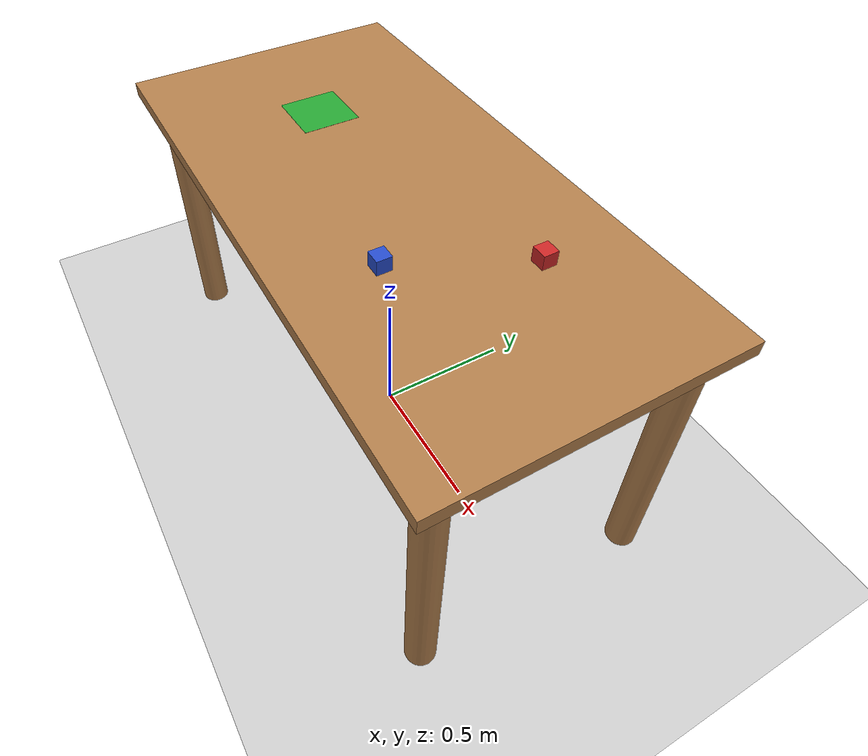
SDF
<?xml version="1.0" ?>
<sdf version="1.6">
  <world name="pick_place_world">

    <!-- Physics -->
    <physics name="default_physics" default="0" type="ode">
      <gravity>0 0 -9.8066</gravity>
      <ode>
        <solver>
          <type>quick</type>
          <iters>150</iters>
          <sor>1.3</sor>
        </solver>
        <constraints>
          <cfm>0.00001</cfm>
          <erp>0.2</erp>
          <contact_max_correcting_vel>1000</contact_max_correcting_vel>
          <contact_surface_layer>0.01</contact_surface_layer>
        </constraints>
      </ode>
      <max_step_size>0.004</max_step_size>
      <real_time_factor>1.0</real_time_factor>
      <real_time_update_rate>250</real_time_update_rate>
    </physics>

    <!-- Lighting -->
    <include>
      <uri>model://sun</uri>
    </include>

    <!-- Ground plane -->
    <include>
      <uri>model://ground_plane</uri>
    </include>

    <!-- Table -->
    <model name="table">
      <static>true</static>
      <link name="link">
        <collision name="surface">
          <pose>0 0 1 0 0 0</pose>
          <geometry>
            <box>
              <size>2 1 0.05</size>
            </box>
          </geometry>
        </collision>
        <visual name="visual1">
          <pose>0 0 1 0 0 0</pose>
          <geometry>
            <box>
              <size>2 1 0.05</size>
            </box>
          </geometry>
          <material>
            <script>
              <uri>file://media/materials/scripts/gazebo.material</uri>
              <name>Gazebo/Wood</name>
            </script>
          </material>
        </visual>
        <!-- Table legs -->
        <collision name="leg1">
          <pose>0.9 0.4 0.5 0 0 0</pose>
          <geometry>
            <cylinder>
              <radius>0.05</radius>
              <length>1</length>
            </cylinder>
          </geometry>
        </collision>
        <visual name="leg1">
          <pose>0.9 0.4 0.5 0 0 0</pose>
          <geometry>
            <cylinder>
              <radius>0.05</radius>
              <length>1</length>
            </cylinder>
          </geometry>
          <material>
            <script>
              <uri>file://media/materials/scripts/gazebo.material</uri>
              <name>Gazebo/Wood</name>
            </script>
          </material>
        </visual>
        <collision name="leg2">
          <pose>0.9 -0.4 0.5 0 0 0</pose>
          <geometry>
            <cylinder>
              <radius>0.05</radius>
              <length>1</length>
            </cylinder>
          </geometry>
        </collision>
        <visual name="leg2">
          <pose>0.9 -0.4 0.5 0 0 0</pose>
          <geometry>
            <cylinder>
              <radius>0.05</radius>
              <length>1</length>
            </cylinder>
          </geometry>
          <material>
            <script>
              <uri>file://media/materials/scripts/gazebo.material</uri>
              <name>Gazebo/Wood</name>
            </script>
          </material>
        </visual>
        <collision name="leg3">
          <pose>-0.9 0.4 0.5 0 0 0</pose>
          <geometry>
            <cylinder>
              <radius>0.05</radius>
              <length>1</length>
            </cylinder>
          </geometry>
        </collision>
        <visual name="leg3">
          <pose>-0.9 0.4 0.5 0 0 0</pose>
          <geometry>
            <cylinder>
              <radius>0.05</radius>
              <length>1</length>
            </cylinder>
          </geometry>
          <material>
            <script>
              <uri>file://media/materials/scripts/gazebo.material</uri>
              <name>Gazebo/Wood</name>
            </script>
          </material>
        </visual>
        <collision name="leg4">
          <pose>-0.9 -0.4 0.5 0 0 0</pose>
          <geometry>
            <cylinder>
              <radius>0.05</radius>
              <length>1</length>
            </cylinder>
          </geometry>
        </collision>
        <visual name="leg4">
          <pose>-0.9 -0.4 0.5 0 0 0</pose>
          <geometry>
            <cylinder>
              <radius>0.05</radius>
              <length>1</length>
            </cylinder>
          </geometry>
          <material>
            <script>
              <uri>file://media/materials/scripts/gazebo.material</uri>
              <name>Gazebo/Wood</name>
            </script>
          </material>
        </visual>
      </link>
    </model>

    <!-- Objects to pick -->
    <model name="red_box">
      <pose>0.5 0.2 1.05 0 0 0</pose>
      <link name="link">
        <inertial>
          <mass>0.1</mass>
          <inertia>
            <ixx>0.000167</ixx>
            <ixy>0</ixy>
            <ixz>0</ixz>
            <iyy>0.000167</iyy>
            <iyz>0</iyz>
            <izz>0.000167</izz>
          </inertia>
        </inertial>
        <collision name="collision">
          <geometry>
            <box>
              <size>0.05 0.05 0.05</size>
            </box>
          </geometry>
        </collision>
        <visual name="visual">
          <geometry>
            <box>
              <size>0.05 0.05 0.05</size>
            </box>
          </geometry>
          <material>
            <script>
              <uri>file://media/materials/scripts/gazebo.material</uri>
              <name>Gazebo/Red</name>
            </script>
          </material>
        </visual>
      </link>
    </model>

    <model name="blue_box">
      <pose>0.3 -0.2 1.05 0 0 0</pose>
      <link name="link">
        <inertial>
          <mass>0.1</mass>
          <inertia>
            <ixx>0.000167</ixx>
            <ixy>0</ixy>
            <ixz>0</ixz>
            <iyy>0.000167</iyy>
            <iyz>0</iyz>
            <izz>0.000167</izz>
          </inertia>
        </inertial>
        <collision name="collision">
          <geometry>
            <box>
              <size>0.05 0.05 0.05</size>
            </box>
          </geometry>
        </collision>
        <visual name="visual">
          <geometry>
            <box>
              <size>0.05 0.05 0.05</size>
            </box>
          </geometry>
          <material>
            <script>
              <uri>file://media/materials/scripts/gazebo.material</uri>
              <name>Gazebo/Blue</name>
            </script>
          </material>
        </visual>
      </link>
    </model>

    <!-- Target area -->
    <model name="target_area">
      <static>true</static>
      <pose>-0.5 0 1.025 0 0 0</pose>
      <link name="link">
        <visual name="visual">
          <geometry>
            <box>
              <size>0.2 0.2 0.001</size>
            </box>
          </geometry>
          <material>
            <script>
              <uri>file://media/materials/scripts/gazebo.material</uri>
              <name>Gazebo/Green</name>
            </script>
          </material>
        </visual>
      </link>
    </model>

  </world>
</sdf>
